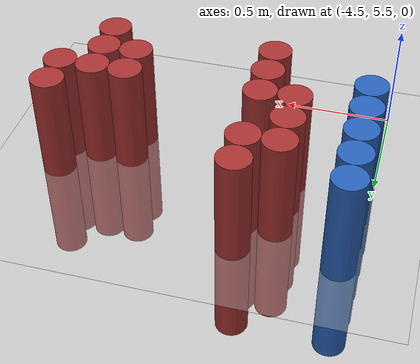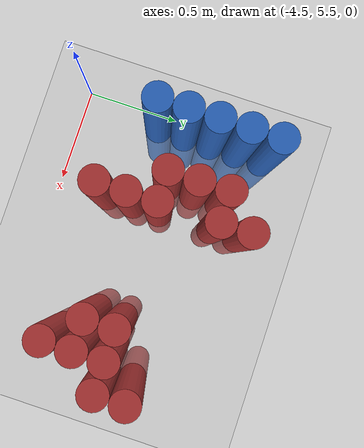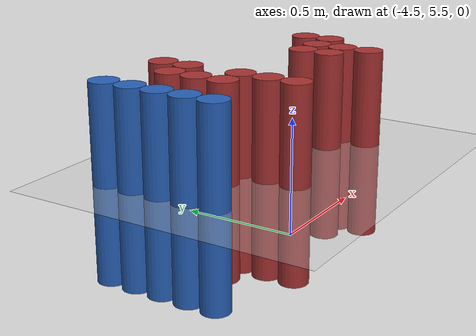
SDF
<sdf version="1.6">
 <world name="default">
  <model name="ground_plane">
   <static>1</static>
   <link name="link">
    <collision name="collision">
     <geometry><plane><normal>0 0 1</normal><size>100 100</size></plane></geometry>
     <surface><friction><ode><mu>100</mu><mu2>50</mu2></ode></friction></surface>
    </collision>
    <visual name="visual">
     <cast_shadows>0</cast_shadows>
     <geometry><plane><normal>0 0 1</normal><size>100 100</size></plane></geometry>
     <material>
      <script><uri>file://media/materials/scripts/gazebo.material</uri><name>Gazebo/Grey</name></script>
     </material>
    </visual>
   </link>
  </model>
  <model name="unit_cylinder_101">
   <static>1</static>
   <pose>-4.425000 5.925000 0.000000 0.000000 0.000000 0.000000</pose>
   <link name="link">
    <inertial>
     <mass>1</mass>
     <inertia><ixx>0.145833</ixx><ixy>0</ixy><ixz>0</ixz><iyy>0.145833</iyy><iyz>0</iyz><izz>0.125</izz></inertia>
    </inertial>
    <collision name="collision">
     <geometry><cylinder><radius>0.075000</radius><length>1</length></cylinder></geometry>
    </collision>
    <visual name="visual">
     <geometry><cylinder><radius>0.075000</radius><length>1</length></cylinder></geometry>
     <material>
      <ambient>0.152000 0.379000 0.720000 1</ambient>
      <diffuse>0.152000 0.379000 0.720000 1</diffuse>
     </material>
     <material>
      <script><name>Gazebo/Grey</name><uri>file://media/materials/scripts/gazebo.material</uri></script>
     </material>
    </visual>
    <sensor name="sensor_contact" type="contact"><contact><collision>collision</collision></contact></sensor>
   </link>
   <plugin filename="gz-sim-touchplugin-system" name="gz::sim::systems::TouchPlugin">
    <target>robot</target>
    <namespace>robot</namespace>
    <time>0.001</time>
    <enabled>true</enabled>
   </plugin>
  </model>
  <model name="unit_cylinder_102">
   <static>1</static>
   <pose>-4.425000 6.075000 0.000000 0.000000 0.000000 0.000000</pose>
   <link name="link">
    <inertial>
     <mass>1</mass>
     <inertia><ixx>0.145833</ixx><ixy>0</ixy><ixz>0</ixz><iyy>0.145833</iyy><iyz>0</iyz><izz>0.125</izz></inertia>
    </inertial>
    <collision name="collision">
     <geometry><cylinder><radius>0.075000</radius><length>1</length></cylinder></geometry>
    </collision>
    <visual name="visual">
     <geometry><cylinder><radius>0.075000</radius><length>1</length></cylinder></geometry>
     <material>
      <ambient>0.152000 0.379000 0.720000 1</ambient>
      <diffuse>0.152000 0.379000 0.720000 1</diffuse>
     </material>
     <material>
      <script><name>Gazebo/Grey</name><uri>file://media/materials/scripts/gazebo.material</uri></script>
     </material>
    </visual>
    <sensor name="sensor_contact" type="contact"><contact><collision>collision</collision></contact></sensor>
   </link>
   <plugin filename="gz-sim-touchplugin-system" name="gz::sim::systems::TouchPlugin">
    <target>robot</target>
    <namespace>robot</namespace>
    <time>0.001</time>
    <enabled>true</enabled>
   </plugin>
  </model>
  <model name="unit_cylinder_103">
   <static>1</static>
   <pose>-4.425000 6.225000 0.000000 0.000000 0.000000 0.000000</pose>
   <link name="link">
    <inertial>
     <mass>1</mass>
     <inertia><ixx>0.145833</ixx><ixy>0</ixy><ixz>0</ixz><iyy>0.145833</iyy><iyz>0</iyz><izz>0.125</izz></inertia>
    </inertial>
    <collision name="collision">
     <geometry><cylinder><radius>0.075000</radius><length>1</length></cylinder></geometry>
    </collision>
    <visual name="visual">
     <geometry><cylinder><radius>0.075000</radius><length>1</length></cylinder></geometry>
     <material>
      <ambient>0.152000 0.379000 0.720000 1</ambient>
      <diffuse>0.152000 0.379000 0.720000 1</diffuse>
     </material>
     <material>
      <script><name>Gazebo/Grey</name><uri>file://media/materials/scripts/gazebo.material</uri></script>
     </material>
    </visual>
    <sensor name="sensor_contact" type="contact"><contact><collision>collision</collision></contact></sensor>
   </link>
   <plugin filename="gz-sim-touchplugin-system" name="gz::sim::systems::TouchPlugin">
    <target>robot</target>
    <namespace>robot</namespace>
    <time>0.001</time>
    <enabled>true</enabled>
   </plugin>
  </model>
  <model name="unit_cylinder_104">
   <static>1</static>
   <pose>-4.425000 6.375000 0.000000 0.000000 0.000000 0.000000</pose>
   <link name="link">
    <inertial>
     <mass>1</mass>
     <inertia><ixx>0.145833</ixx><ixy>0</ixy><ixz>0</ixz><iyy>0.145833</iyy><iyz>0</iyz><izz>0.125</izz></inertia>
    </inertial>
    <collision name="collision">
     <geometry><cylinder><radius>0.075000</radius><length>1</length></cylinder></geometry>
    </collision>
    <visual name="visual">
     <geometry><cylinder><radius>0.075000</radius><length>1</length></cylinder></geometry>
     <material>
      <ambient>0.152000 0.379000 0.720000 1</ambient>
      <diffuse>0.152000 0.379000 0.720000 1</diffuse>
     </material>
     <material>
      <script><name>Gazebo/Grey</name><uri>file://media/materials/scripts/gazebo.material</uri></script>
     </material>
    </visual>
    <sensor name="sensor_contact" type="contact"><contact><collision>collision</collision></contact></sensor>
   </link>
   <plugin filename="gz-sim-touchplugin-system" name="gz::sim::systems::TouchPlugin">
    <target>robot</target>
    <namespace>robot</namespace>
    <time>0.001</time>
    <enabled>true</enabled>
   </plugin>
  </model>
  <model name="unit_cylinder_105">
   <static>1</static>
   <pose>-4.425000 6.525000 0.000000 0.000000 0.000000 0.000000</pose>
   <link name="link">
    <inertial>
     <mass>1</mass>
     <inertia><ixx>0.145833</ixx><ixy>0</ixy><ixz>0</ixz><iyy>0.145833</iyy><iyz>0</iyz><izz>0.125</izz></inertia>
    </inertial>
    <collision name="collision">
     <geometry><cylinder><radius>0.075000</radius><length>1</length></cylinder></geometry>
    </collision>
    <visual name="visual">
     <geometry><cylinder><radius>0.075000</radius><length>1</length></cylinder></geometry>
     <material>
      <ambient>0.152000 0.379000 0.720000 1</ambient>
      <diffuse>0.152000 0.379000 0.720000 1</diffuse>
     </material>
     <material>
      <script><name>Gazebo/Grey</name><uri>file://media/materials/scripts/gazebo.material</uri></script>
     </material>
    </visual>
    <sensor name="sensor_contact" type="contact"><contact><collision>collision</collision></contact></sensor>
   </link>
   <plugin filename="gz-sim-touchplugin-system" name="gz::sim::systems::TouchPlugin">
    <target>robot</target>
    <namespace>robot</namespace>
    <time>0.001</time>
    <enabled>true</enabled>
   </plugin>
  </model>
  <model name="unit_cylinder_138">
   <static>1</static>
   <pose>-4.125000 6.075000 0.000000 0.000000 0.000000 0.000000</pose>
   <link name="link">
    <inertial>
     <mass>1</mass>
     <inertia><ixx>0.145833</ixx><ixy>0</ixy><ixz>0</ixz><iyy>0.145833</iyy><iyz>0</iyz><izz>0.125</izz></inertia>
    </inertial>
    <collision name="collision">
     <geometry><cylinder><radius>0.075000</radius><length>1</length></cylinder></geometry>
    </collision>
    <visual name="visual">
     <geometry><cylinder><radius>0.075000</radius><length>1</length></cylinder></geometry>
     <material>
      <ambient>0.648000 0.192000 0.192000 1</ambient>
      <diffuse>0.648000 0.192000 0.192000 1</diffuse>
     </material>
     <material>
      <script><name>Gazebo/Grey</name><uri>file://media/materials/scripts/gazebo.material</uri></script>
     </material>
    </visual>
    <sensor name="sensor_contact" type="contact"><contact><collision>collision</collision></contact></sensor>
   </link>
   <plugin filename="gz-sim-touchplugin-system" name="gz::sim::systems::TouchPlugin">
    <target>robot</target>
    <namespace>robot</namespace>
    <time>0.001</time>
    <enabled>true</enabled>
   </plugin>
  </model>
  <model name="unit_cylinder_139">
   <static>1</static>
   <pose>-4.125000 6.225000 0.000000 0.000000 0.000000 0.000000</pose>
   <link name="link">
    <inertial>
     <mass>1</mass>
     <inertia><ixx>0.145833</ixx><ixy>0</ixy><ixz>0</ixz><iyy>0.145833</iyy><iyz>0</iyz><izz>0.125</izz></inertia>
    </inertial>
    <collision name="collision">
     <geometry><cylinder><radius>0.075000</radius><length>1</length></cylinder></geometry>
    </collision>
    <visual name="visual">
     <geometry><cylinder><radius>0.075000</radius><length>1</length></cylinder></geometry>
     <material>
      <ambient>0.648000 0.192000 0.192000 1</ambient>
      <diffuse>0.648000 0.192000 0.192000 1</diffuse>
     </material>
     <material>
      <script><name>Gazebo/Grey</name><uri>file://media/materials/scripts/gazebo.material</uri></script>
     </material>
    </visual>
    <sensor name="sensor_contact" type="contact"><contact><collision>collision</collision></contact></sensor>
   </link>
   <plugin filename="gz-sim-touchplugin-system" name="gz::sim::systems::TouchPlugin">
    <target>robot</target>
    <namespace>robot</namespace>
    <time>0.001</time>
    <enabled>true</enabled>
   </plugin>
  </model>
  <model name="unit_cylinder_140">
   <static>1</static>
   <pose>-4.125000 6.375000 0.000000 0.000000 0.000000 0.000000</pose>
   <link name="link">
    <inertial>
     <mass>1</mass>
     <inertia><ixx>0.145833</ixx><ixy>0</ixy><ixz>0</ixz><iyy>0.145833</iyy><iyz>0</iyz><izz>0.125</izz></inertia>
    </inertial>
    <collision name="collision">
     <geometry><cylinder><radius>0.075000</radius><length>1</length></cylinder></geometry>
    </collision>
    <visual name="visual">
     <geometry><cylinder><radius>0.075000</radius><length>1</length></cylinder></geometry>
     <material>
      <ambient>0.648000 0.192000 0.192000 1</ambient>
      <diffuse>0.648000 0.192000 0.192000 1</diffuse>
     </material>
     <material>
      <script><name>Gazebo/Grey</name><uri>file://media/materials/scripts/gazebo.material</uri></script>
     </material>
    </visual>
    <sensor name="sensor_contact" type="contact"><contact><collision>collision</collision></contact></sensor>
   </link>
   <plugin filename="gz-sim-touchplugin-system" name="gz::sim::systems::TouchPlugin">
    <target>robot</target>
    <namespace>robot</namespace>
    <time>0.001</time>
    <enabled>true</enabled>
   </plugin>
  </model>
  <model name="unit_cylinder_149">
   <static>1</static>
   <pose>-3.975000 5.775000 0.000000 0.000000 0.000000 0.000000</pose>
   <link name="link">
    <inertial>
     <mass>1</mass>
     <inertia><ixx>0.145833</ixx><ixy>0</ixy><ixz>0</ixz><iyy>0.145833</iyy><iyz>0</iyz><izz>0.125</izz></inertia>
    </inertial>
    <collision name="collision">
     <geometry><cylinder><radius>0.075000</radius><length>1</length></cylinder></geometry>
    </collision>
    <visual name="visual">
     <geometry><cylinder><radius>0.075000</radius><length>1</length></cylinder></geometry>
     <material>
      <ambient>0.648000 0.192000 0.192000 1</ambient>
      <diffuse>0.648000 0.192000 0.192000 1</diffuse>
     </material>
     <material>
      <script><name>Gazebo/Grey</name><uri>file://media/materials/scripts/gazebo.material</uri></script>
     </material>
    </visual>
    <sensor name="sensor_contact" type="contact"><contact><collision>collision</collision></contact></sensor>
   </link>
   <plugin filename="gz-sim-touchplugin-system" name="gz::sim::systems::TouchPlugin">
    <target>robot</target>
    <namespace>robot</namespace>
    <time>0.001</time>
    <enabled>true</enabled>
   </plugin>
  </model>
  <model name="unit_cylinder_150">
   <static>1</static>
   <pose>-3.975000 5.925000 0.000000 0.000000 0.000000 0.000000</pose>
   <link name="link">
    <inertial>
     <mass>1</mass>
     <inertia><ixx>0.145833</ixx><ixy>0</ixy><ixz>0</ixz><iyy>0.145833</iyy><iyz>0</iyz><izz>0.125</izz></inertia>
    </inertial>
    <collision name="collision">
     <geometry><cylinder><radius>0.075000</radius><length>1</length></cylinder></geometry>
    </collision>
    <visual name="visual">
     <geometry><cylinder><radius>0.075000</radius><length>1</length></cylinder></geometry>
     <material>
      <ambient>0.648000 0.192000 0.192000 1</ambient>
      <diffuse>0.648000 0.192000 0.192000 1</diffuse>
     </material>
     <material>
      <script><name>Gazebo/Grey</name><uri>file://media/materials/scripts/gazebo.material</uri></script>
     </material>
    </visual>
    <sensor name="sensor_contact" type="contact"><contact><collision>collision</collision></contact></sensor>
   </link>
   <plugin filename="gz-sim-touchplugin-system" name="gz::sim::systems::TouchPlugin">
    <target>robot</target>
    <namespace>robot</namespace>
    <time>0.001</time>
    <enabled>true</enabled>
   </plugin>
  </model>
  <model name="unit_cylinder_151">
   <static>1</static>
   <pose>-3.975000 6.075000 0.000000 0.000000 0.000000 0.000000</pose>
   <link name="link">
    <inertial>
     <mass>1</mass>
     <inertia><ixx>0.145833</ixx><ixy>0</ixy><ixz>0</ixz><iyy>0.145833</iyy><iyz>0</iyz><izz>0.125</izz></inertia>
    </inertial>
    <collision name="collision">
     <geometry><cylinder><radius>0.075000</radius><length>1</length></cylinder></geometry>
    </collision>
    <visual name="visual">
     <geometry><cylinder><radius>0.075000</radius><length>1</length></cylinder></geometry>
     <material>
      <ambient>0.648000 0.192000 0.192000 1</ambient>
      <diffuse>0.648000 0.192000 0.192000 1</diffuse>
     </material>
     <material>
      <script><name>Gazebo/Grey</name><uri>file://media/materials/scripts/gazebo.material</uri></script>
     </material>
    </visual>
    <sensor name="sensor_contact" type="contact"><contact><collision>collision</collision></contact></sensor>
   </link>
   <plugin filename="gz-sim-touchplugin-system" name="gz::sim::systems::TouchPlugin">
    <target>robot</target>
    <namespace>robot</namespace>
    <time>0.001</time>
    <enabled>true</enabled>
   </plugin>
  </model>
  <model name="unit_cylinder_152">
   <static>1</static>
   <pose>-3.975000 6.375000 0.000000 0.000000 0.000000 0.000000</pose>
   <link name="link">
    <inertial>
     <mass>1</mass>
     <inertia><ixx>0.145833</ixx><ixy>0</ixy><ixz>0</ixz><iyy>0.145833</iyy><iyz>0</iyz><izz>0.125</izz></inertia>
    </inertial>
    <collision name="collision">
     <geometry><cylinder><radius>0.075000</radius><length>1</length></cylinder></geometry>
    </collision>
    <visual name="visual">
     <geometry><cylinder><radius>0.075000</radius><length>1</length></cylinder></geometry>
     <material>
      <ambient>0.648000 0.192000 0.192000 1</ambient>
      <diffuse>0.648000 0.192000 0.192000 1</diffuse>
     </material>
     <material>
      <script><name>Gazebo/Grey</name><uri>file://media/materials/scripts/gazebo.material</uri></script>
     </material>
    </visual>
    <sensor name="sensor_contact" type="contact"><contact><collision>collision</collision></contact></sensor>
   </link>
   <plugin filename="gz-sim-touchplugin-system" name="gz::sim::systems::TouchPlugin">
    <target>robot</target>
    <namespace>robot</namespace>
    <time>0.001</time>
    <enabled>true</enabled>
   </plugin>
  </model>
  <model name="unit_cylinder_153">
   <static>1</static>
   <pose>-3.975000 6.525000 0.000000 0.000000 0.000000 0.000000</pose>
   <link name="link">
    <inertial>
     <mass>1</mass>
     <inertia><ixx>0.145833</ixx><ixy>0</ixy><ixz>0</ixz><iyy>0.145833</iyy><iyz>0</iyz><izz>0.125</izz></inertia>
    </inertial>
    <collision name="collision">
     <geometry><cylinder><radius>0.075000</radius><length>1</length></cylinder></geometry>
    </collision>
    <visual name="visual">
     <geometry><cylinder><radius>0.075000</radius><length>1</length></cylinder></geometry>
     <material>
      <ambient>0.648000 0.192000 0.192000 1</ambient>
      <diffuse>0.648000 0.192000 0.192000 1</diffuse>
     </material>
     <material>
      <script><name>Gazebo/Grey</name><uri>file://media/materials/scripts/gazebo.material</uri></script>
     </material>
    </visual>
    <sensor name="sensor_contact" type="contact"><contact><collision>collision</collision></contact></sensor>
   </link>
   <plugin filename="gz-sim-touchplugin-system" name="gz::sim::systems::TouchPlugin">
    <target>robot</target>
    <namespace>robot</namespace>
    <time>0.001</time>
    <enabled>true</enabled>
   </plugin>
  </model>
  <model name="unit_cylinder_175">
   <static>1</static>
   <pose>-3.375000 5.925000 0.000000 0.000000 0.000000 0.000000</pose>
   <link name="link">
    <inertial>
     <mass>1</mass>
     <inertia><ixx>0.145833</ixx><ixy>0</ixy><ixz>0</ixz><iyy>0.145833</iyy><iyz>0</iyz><izz>0.125</izz></inertia>
    </inertial>
    <collision name="collision">
     <geometry><cylinder><radius>0.075000</radius><length>1</length></cylinder></geometry>
    </collision>
    <visual name="visual">
     <geometry><cylinder><radius>0.075000</radius><length>1</length></cylinder></geometry>
     <material>
      <ambient>0.648000 0.192000 0.192000 1</ambient>
      <diffuse>0.648000 0.192000 0.192000 1</diffuse>
     </material>
     <material>
      <script><name>Gazebo/Grey</name><uri>file://media/materials/scripts/gazebo.material</uri></script>
     </material>
    </visual>
    <sensor name="sensor_contact" type="contact"><contact><collision>collision</collision></contact></sensor>
   </link>
   <plugin filename="gz-sim-touchplugin-system" name="gz::sim::systems::TouchPlugin">
    <target>robot</target>
    <namespace>robot</namespace>
    <time>0.001</time>
    <enabled>true</enabled>
   </plugin>
  </model>
  <model name="unit_cylinder_176">
   <static>1</static>
   <pose>-3.375000 6.075000 0.000000 0.000000 0.000000 0.000000</pose>
   <link name="link">
    <inertial>
     <mass>1</mass>
     <inertia><ixx>0.145833</ixx><ixy>0</ixy><ixz>0</ixz><iyy>0.145833</iyy><iyz>0</iyz><izz>0.125</izz></inertia>
    </inertial>
    <collision name="collision">
     <geometry><cylinder><radius>0.075000</radius><length>1</length></cylinder></geometry>
    </collision>
    <visual name="visual">
     <geometry><cylinder><radius>0.075000</radius><length>1</length></cylinder></geometry>
     <material>
      <ambient>0.648000 0.192000 0.192000 1</ambient>
      <diffuse>0.648000 0.192000 0.192000 1</diffuse>
     </material>
     <material>
      <script><name>Gazebo/Grey</name><uri>file://media/materials/scripts/gazebo.material</uri></script>
     </material>
    </visual>
    <sensor name="sensor_contact" type="contact"><contact><collision>collision</collision></contact></sensor>
   </link>
   <plugin filename="gz-sim-touchplugin-system" name="gz::sim::systems::TouchPlugin">
    <target>robot</target>
    <namespace>robot</namespace>
    <time>0.001</time>
    <enabled>true</enabled>
   </plugin>
  </model>
  <model name="unit_cylinder_182">
   <static>1</static>
   <pose>-3.225000 5.775000 0.000000 0.000000 0.000000 0.000000</pose>
   <link name="link">
    <inertial>
     <mass>1</mass>
     <inertia><ixx>0.145833</ixx><ixy>0</ixy><ixz>0</ixz><iyy>0.145833</iyy><iyz>0</iyz><izz>0.125</izz></inertia>
    </inertial>
    <collision name="collision">
     <geometry><cylinder><radius>0.075000</radius><length>1</length></cylinder></geometry>
    </collision>
    <visual name="visual">
     <geometry><cylinder><radius>0.075000</radius><length>1</length></cylinder></geometry>
     <material>
      <ambient>0.648000 0.192000 0.192000 1</ambient>
      <diffuse>0.648000 0.192000 0.192000 1</diffuse>
     </material>
     <material>
      <script><name>Gazebo/Grey</name><uri>file://media/materials/scripts/gazebo.material</uri></script>
     </material>
    </visual>
    <sensor name="sensor_contact" type="contact"><contact><collision>collision</collision></contact></sensor>
   </link>
   <plugin filename="gz-sim-touchplugin-system" name="gz::sim::systems::TouchPlugin">
    <target>robot</target>
    <namespace>robot</namespace>
    <time>0.001</time>
    <enabled>true</enabled>
   </plugin>
  </model>
  <model name="unit_cylinder_183">
   <static>1</static>
   <pose>-3.225000 5.925000 0.000000 0.000000 0.000000 0.000000</pose>
   <link name="link">
    <inertial>
     <mass>1</mass>
     <inertia><ixx>0.145833</ixx><ixy>0</ixy><ixz>0</ixz><iyy>0.145833</iyy><iyz>0</iyz><izz>0.125</izz></inertia>
    </inertial>
    <collision name="collision">
     <geometry><cylinder><radius>0.075000</radius><length>1</length></cylinder></geometry>
    </collision>
    <visual name="visual">
     <geometry><cylinder><radius>0.075000</radius><length>1</length></cylinder></geometry>
     <material>
      <ambient>0.648000 0.192000 0.192000 1</ambient>
      <diffuse>0.648000 0.192000 0.192000 1</diffuse>
     </material>
     <material>
      <script><name>Gazebo/Grey</name><uri>file://media/materials/scripts/gazebo.material</uri></script>
     </material>
    </visual>
    <sensor name="sensor_contact" type="contact"><contact><collision>collision</collision></contact></sensor>
   </link>
   <plugin filename="gz-sim-touchplugin-system" name="gz::sim::systems::TouchPlugin">
    <target>robot</target>
    <namespace>robot</namespace>
    <time>0.001</time>
    <enabled>true</enabled>
   </plugin>
  </model>
  <model name="unit_cylinder_184">
   <static>1</static>
   <pose>-3.225000 6.075000 0.000000 0.000000 0.000000 0.000000</pose>
   <link name="link">
    <inertial>
     <mass>1</mass>
     <inertia><ixx>0.145833</ixx><ixy>0</ixy><ixz>0</ixz><iyy>0.145833</iyy><iyz>0</iyz><izz>0.125</izz></inertia>
    </inertial>
    <collision name="collision">
     <geometry><cylinder><radius>0.075000</radius><length>1</length></cylinder></geometry>
    </collision>
    <visual name="visual">
     <geometry><cylinder><radius>0.075000</radius><length>1</length></cylinder></geometry>
     <material>
      <ambient>0.648000 0.192000 0.192000 1</ambient>
      <diffuse>0.648000 0.192000 0.192000 1</diffuse>
     </material>
     <material>
      <script><name>Gazebo/Grey</name><uri>file://media/materials/scripts/gazebo.material</uri></script>
     </material>
    </visual>
    <sensor name="sensor_contact" type="contact"><contact><collision>collision</collision></contact></sensor>
   </link>
   <plugin filename="gz-sim-touchplugin-system" name="gz::sim::systems::TouchPlugin">
    <target>robot</target>
    <namespace>robot</namespace>
    <time>0.001</time>
    <enabled>true</enabled>
   </plugin>
  </model>
  <model name="unit_cylinder_192">
   <static>1</static>
   <pose>-3.075000 6.075000 0.000000 0.000000 0.000000 0.000000</pose>
   <link name="link">
    <inertial>
     <mass>1</mass>
     <inertia><ixx>0.145833</ixx><ixy>0</ixy><ixz>0</ixz><iyy>0.145833</iyy><iyz>0</iyz><izz>0.125</izz></inertia>
    </inertial>
    <collision name="collision">
     <geometry><cylinder><radius>0.075000</radius><length>1</length></cylinder></geometry>
    </collision>
    <visual name="visual">
     <geometry><cylinder><radius>0.075000</radius><length>1</length></cylinder></geometry>
     <material>
      <ambient>0.648000 0.192000 0.192000 1</ambient>
      <diffuse>0.648000 0.192000 0.192000 1</diffuse>
     </material>
     <material>
      <script><name>Gazebo/Grey</name><uri>file://media/materials/scripts/gazebo.material</uri></script>
     </material>
    </visual>
    <sensor name="sensor_contact" type="contact"><contact><collision>collision</collision></contact></sensor>
   </link>
   <plugin filename="gz-sim-touchplugin-system" name="gz::sim::systems::TouchPlugin">
    <target>robot</target>
    <namespace>robot</namespace>
    <time>0.001</time>
    <enabled>true</enabled>
   </plugin>
  </model>
  <model name="unit_cylinder_193">
   <static>1</static>
   <pose>-3.075000 6.225000 0.000000 0.000000 0.000000 0.000000</pose>
   <link name="link">
    <inertial>
     <mass>1</mass>
     <inertia><ixx>0.145833</ixx><ixy>0</ixy><ixz>0</ixz><iyy>0.145833</iyy><iyz>0</iyz><izz>0.125</izz></inertia>
    </inertial>
    <collision name="collision">
     <geometry><cylinder><radius>0.075000</radius><length>1</length></cylinder></geometry>
    </collision>
    <visual name="visual">
     <geometry><cylinder><radius>0.075000</radius><length>1</length></cylinder></geometry>
     <material>
      <ambient>0.648000 0.192000 0.192000 1</ambient>
      <diffuse>0.648000 0.192000 0.192000 1</diffuse>
     </material>
     <material>
      <script><name>Gazebo/Grey</name><uri>file://media/materials/scripts/gazebo.material</uri></script>
     </material>
    </visual>
    <sensor name="sensor_contact" type="contact"><contact><collision>collision</collision></contact></sensor>
   </link>
   <plugin filename="gz-sim-touchplugin-system" name="gz::sim::systems::TouchPlugin">
    <target>robot</target>
    <namespace>robot</namespace>
    <time>0.001</time>
    <enabled>true</enabled>
   </plugin>
  </model>
 </world>
</sdf>
